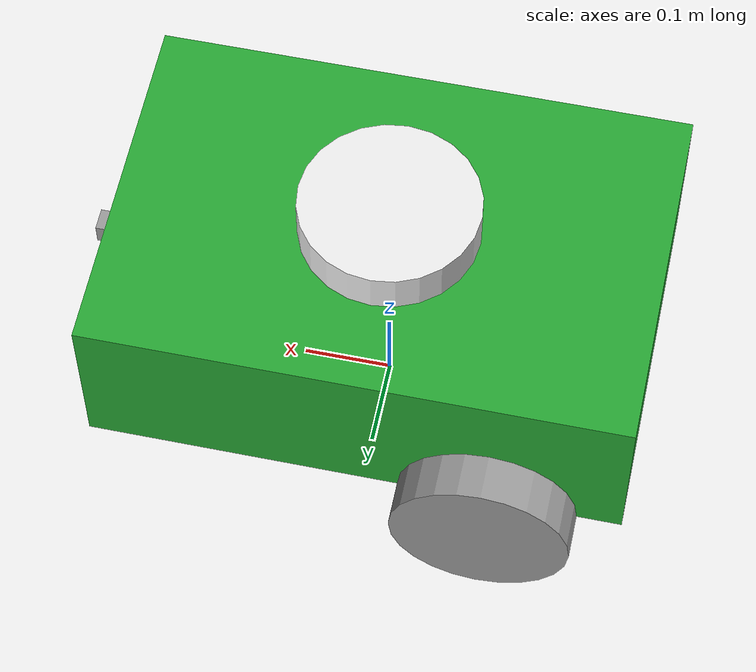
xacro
<?xml version="1.0"?>
<robot xmlns:xacro="http://ros.org/wiki/xacro" >

<xacro:property name="base_length" value="0.6" />
<xacro:property name="base_width" value="0.4" />
<xacro:property name="base_hight" value="0.2" />
<xacro:property name="wheel_r" value="0.1" />
<xacro:property name="wheel_length" value="0.05" />

<inertial>
  <mass value="1.0"/>
  <origin xyz="0.0 0.0 0.0" rpy="0.0 0.0 0.0"/>
  <inertia ixx="0.1" ixy="0.0" ixz="0.0" iyy="0.1" iyz="0.0" izz="0.1"/>
</inertial>

    <link name="base_footprint">
    </link>

    <link name="base_link">
        <visual>
            <geometry>
                <box size="${base_length} ${base_width} ${base_hight}"/>
            </geometry>
            <origin xyz="0.0 0.0 ${base_hight/2.0}" rpy="0.0 0.0 0.0"/>
            <material name="green"/>
        </visual>
        <collision>
            <geometry>
                <box size="${base_length} ${base_width} ${base_hight}"/>
            </geometry>
            <origin xyz="0.0 0.0 ${base_hight/2.0}" rpy="0.0 0.0 0.0"/>
        </collision>

        <xacro:box_inertia m="5.0" l="${2*base_length}" w="${2*base_width}" h="${2*base_hight}" xyz="0.0 0.0 ${base_hight/2.0}" rpy="0.0 0.0 0.0"/>
    </link>

    <link name="lidar_link">
        <visual name="">
            <origin xyz="0.0 0.0 0.0" rpy="0.0 0.0 0.0"/>
            <geometry>
                <cylinder radius="0.1" length="0.05"/>
            </geometry>
            <material name="white" />
        </visual>
        <collision>
             <origin xyz="0.0 0.0 0.0" rpy="0.0 0.0 0.0"/>
            <geometry>
                <cylinder radius="0.1" length="0.05"/>
            </geometry>
        </collision>
    </link>

    <link name="left_wheel_link">
     <visual>
        <origin xyz="0.0 0.0 0.0" rpy="${pi / 2.0} 0.0 0.0"/>
        <geometry>
            <cylinder radius="${wheel_r}" length="${wheel_length}"/>
        </geometry>
        <material name="grey"/>
     </visual>
     <collision>
         <origin xyz="0.0 0.0 0.0" rpy="${pi / 2.0} 0.0 0.0"/>
        <geometry>
            <cylinder radius="${wheel_r}" length="${wheel_length}"/>
        </geometry>
     </collision>
     <xacro:cylinder_inertia m="1.0" r="${2*wheel_r}" h="${2*wheel_length}" xyz="0.0 0.0 0.0" rpy="${pi / 2.0} 0.0 0.0" />
    </link>

    <link name="right_wheel_link">
    <visual>
        <origin xyz="0.0 0.0 0.0" rpy="${pi / 2.0} 0.0 0.0"/>
        <geometry>
            <cylinder radius="${wheel_r}" length="${wheel_length}"/>
        </geometry>
        <material name="grey"/>
    </visual>
   <collision>
        <origin xyz="0.0 0.0 0.0" rpy="${pi / 2.0} 0.0 0.0"/>
        <geometry>
            <cylinder radius="${wheel_r}" length="${wheel_length}"/>
        </geometry>
   </collision>
    <xacro:cylinder_inertia m="1.0" r="${2*wheel_r}" h="${2*wheel_length}" xyz="0.0 0.0 0.0" rpy="${pi / 2.0} 0.0 0.0" />
    </link>

<link name="caster_link">
    <visual>
        <origin xyz="0.0 0.0 0.0" rpy="0.0 0.0 0.0"/>
        <geometry>
            <sphere radius="${wheel_r / 2.0}"/>
        </geometry>
        <material name="grey"/>
    </visual>
    <collision>
        <origin xyz="0.0 0.0 0.0" rpy="0.0 0.0 0.0"/>
        <geometry>
            <sphere radius="${wheel_r / 2.0}"/>
        </geometry>
    </collision>
    <xacro:sphere_inertia m="0.5" r="${2*wheel_r / 2.0}" xyz="0.0 0.0 0.0" rpy="0.0 0.0 0.0" />
</link>

<link name="camera_link">
  <visual>
   <origin xyz="0.0 0.0 0.0" rpy="0.0 0.0 0.0"/>
    <geometry>
      <box size="0.025 0.025 0.025"/>
    </geometry>
    <material name="grey"/>
  </visual>
</link>

<joint name="base_joint" type="fixed">
    <origin xyz="0.0 0.0 ${wheel_r}" rpy="0.0 0.0 0.0"/>
    <parent link="base_footprint"/>
    <child link="base_link"/>

</joint>

    <joint name="base_lidar_joint" type="fixed">
    <parent link="base_link"/>
    <child link="lidar_link"/>
    <origin xyz="0.0 0.0 0.225" rpy="0.0 0.0 0.0"/>
    </joint>

    <joint name="left_wheel_joint" type="continuous">
        <parent link="base_link"/>
        <child link="left_wheel_link"/>
        <origin xyz="${-base_length / 4.0} ${(base_width + wheel_length)/2.0} 0.0" rpy="0.0 0.0 0.0"/>
        <axis xyz="0 1 0.0"/>
    </joint>

     <joint name="right_wheel_joint" type="continuous">
        <parent link="base_link"/>
        <child link="right_wheel_link"/>
        <origin xyz="${-base_length / 4.0} ${-(base_width + wheel_length)/2.0} 0.0" rpy="0.0 0.0 0.0"/>
        <axis xyz="0 1 0.0"/>
    </joint>

    <joint name="caster_joint" type="fixed">
        <origin xyz="${base_length/3.0} 0.0 ${-(wheel_r / 2.0)}" rpy="0.0 0.0 0.0"/>
        <parent link="base_link"/>
        <child link="caster_link"/>
    </joint>

    <joint name="camera_joint" type="fixed">
  <parent link="base_link"/>
  <child link="camera_link"/>
  <origin xyz="0.32 0 0.1" rpy="0 0 0"/>
</joint>

<gazebo reference="camera_link">
  <sensor type="camera" name="camera_sensor">
    <pose>0 0 0 0 0 0</pose>
    <camera>
      <horizontal_fov>1.57</horizontal_fov>
      <image>
        <width>640</width>
        <height>480</height>
        <format>R8G8B8</format>
      </image>
      <clip>
        <near>0.1</near>
        <far>100</far>
      </clip>
    </camera>
    <plugin name="gazebo_ros_camera" filename="libgazebo_ros_camera.so">
     <cameraName>camera_sensor</cameraName>
  <ros>
    <namespace>/my_robot</namespace>
    <argument>camera</argument>
  </ros>
</plugin>
  </sensor>
</gazebo>

<gazebo reference="lidar_link">
  <sensor type="ray" name="lidar_sensor">
    <pose>0 0 0 0 0 0</pose>
    <ray>
      <scan>
        <horizontal>
          <samples>360</samples>
          <resolution>1</resolution>
          <min_angle>-1.57</min_angle>
          <max_angle>1.57</max_angle>
        </horizontal>
      </scan>
      <range>
        <min>0.1</min>
        <max>10.0</max>
        <resolution>0.01</resolution>
      </range>
    </ray>
    <plugin name="gazebo_ros_laser" filename="libgazebo_ros_laser.so"/>
  </sensor>
</gazebo>

</robot>
